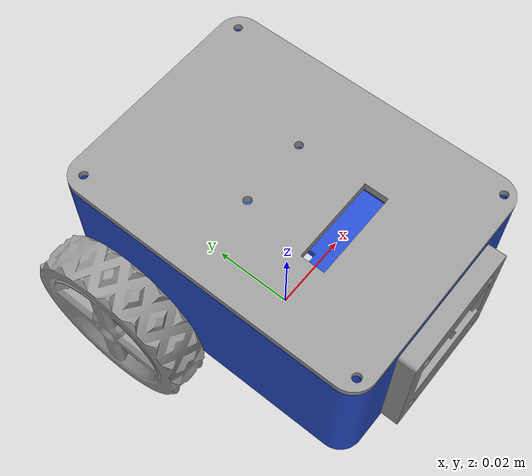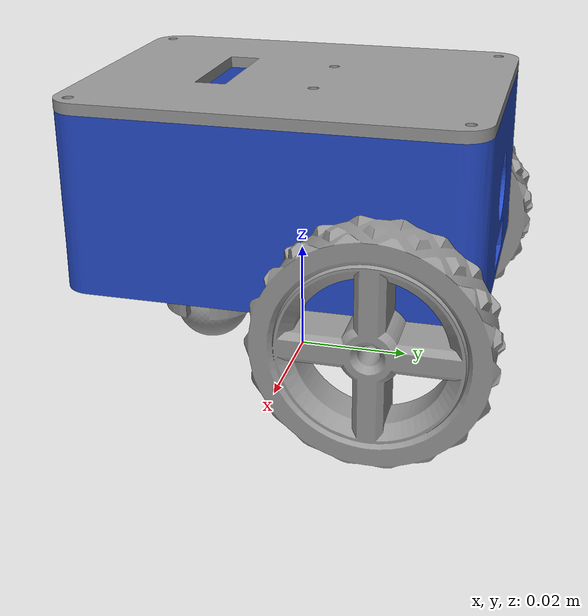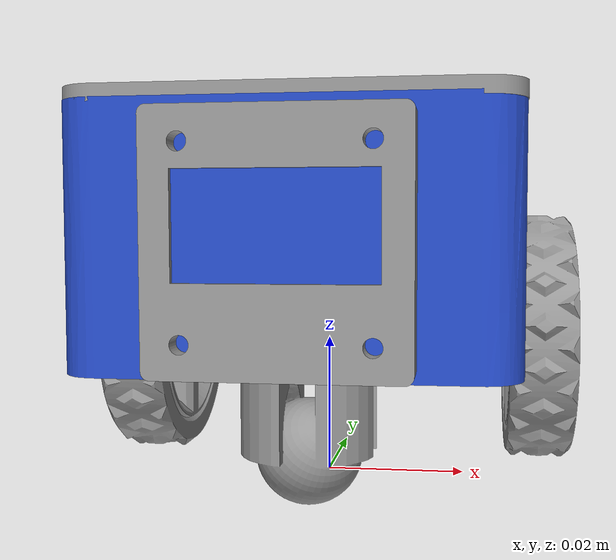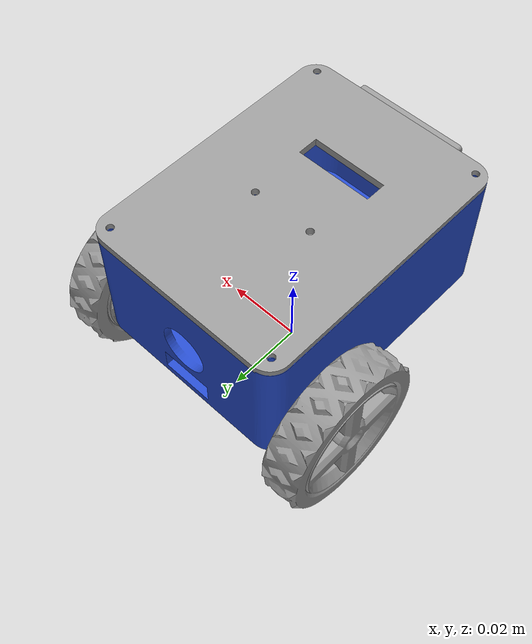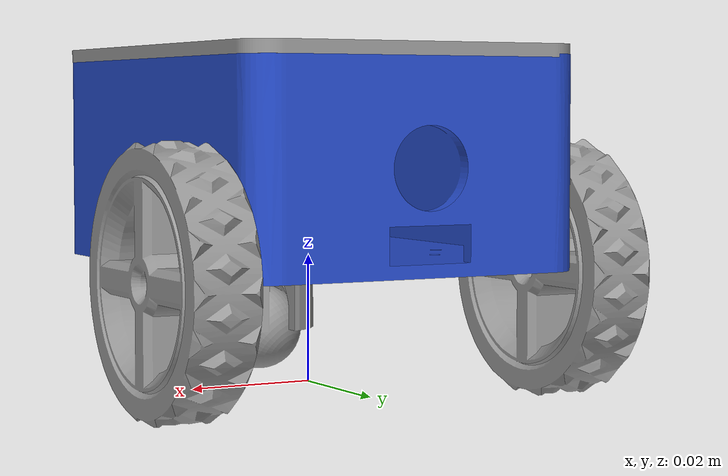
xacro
<?xml version="1.0"?>
<robot xmlns:xacro="http://www.ros.org/wiki/xacro">

    <link name="base_link">
        <visual>
            <geometry>
                <mesh  filename="package://my_companion_robot/meshes/base_edited.stl"
                scale="0.001 0.001 0.001"/>
            </geometry>
            <origin xyz="0 0 0" rpy="0 0 0" />
            <material name="blue" />
        </visual>
        <collision>
            <geometry>
                <box size="0.054 0.08 0.034 "/>
            </geometry>
            <origin xyz="0 0 0.018" rpy="0 0 0" />
        </collision>

        <inertial>

            <origin xyz="0 0 0.018" rpy="0 0 0"/>
            <mass value="0.038"/>
            <inertia
                ixx="3.1321e-05"
                ixy="-2.7215e-08"
                ixz="1.0147e-08"
                iyy="1.9849e-05"
                iyz="-2.7365e-07"
                izz="3.9200e-05"/>

        </inertial>
    </link>

    <xacro:macro name="wheel_link" params="prefix">
        <link name="${prefix}_wheel_link">
            <visual>
                <geometry>
                    <mesh filename="package://my_companion_robot/meshes/wheel.stl"
                          scale="0.001 0.001 0.001" />
                </geometry>
                <origin xyz="0 0 0" rpy="${pi / 2.0} 0 ${pi / 2.0}" />
                <material name="grey" />
            </visual>
            <collision>
                <geometry>
                    <cylinder radius="0.021" length="0.01" />
                </geometry>
                <origin xyz="0.005 0 0" rpy="${pi / 2.0} 0 ${pi / 2.0}" />
            </collision>
            <inertial>
                <origin xyz="0.005 0 0" rpy="${pi / 2.0} 0 ${pi / 2.0}"/>

                <mass value="0.018"/>

                <inertia
                    ixx="1.24355e-06"
                    ixy="0.0"
                    ixz="0.0"
                    iyy="1.24349e-06"
                    iyz="0.0"
                    izz="2.22070e-06"/>
            </inertial>
        </link>
    </xacro:macro>

    <xacro:wheel_link prefix="right" />
    <xacro:wheel_link prefix="left" />

     <link name="castor_wheel_link">
        <visual>
            <geometry>
                <mesh filename="package://my_companion_robot/meshes/castor_wheel.stl"
                          scale="0.001 0.001 0.001" />
            </geometry>
            <origin xyz="0 0 0" rpy="0 0 0" />
            <material name="grey" />
        </visual>
        <collision>
            <geometry>
                <cylinder radius="0.012" length="0.022"/>
            </geometry>
            <origin xyz="0 0 0.013" rpy="0 0 0" />
        </collision>
        <inertial>
            <origin xyz="0 0 0.013" rpy="0 0 0"/>

            <mass value="0.016"/>

            <inertia
                ixx="8.82630e-07"
                ixy="0.0"
                ixz="0.0"
                iyy="8.82619e-07"
                iyz="0.0"
                izz="5.89002e-07"/>
        </inertial>
    </link>

    <link name="base_footprint" />

    <link name="lid_link">
        <visual>
            <geometry>
                <mesh filename="package://my_companion_robot/meshes/lid_edited.stl"
                          scale="0.001 0.001 0.001" />
            </geometry>
            <origin xyz="0 0 0" rpy="0 0 0" />
            <material name="grey" />
        </visual>

    </link>

    <link name="oled_bezel_link">
        <visual>
            <geometry>
                <mesh filename="package://my_companion_robot/meshes/Bezel_OLEDyebl_096.stl"
                      scale="0.001 0.001 0.001"/>
            </geometry>

            <material name="grey"/>
        </visual>

    </link>

    <joint name="base_right_wheel_joint" type="continuous">
        <parent link="base_link" />
        <child link="right_wheel_link" />
        <origin xyz="0.027 0.02 0" rpy="0 0 0" />
        <axis xyz="1 0 0" />
    </joint>

    <joint name="base_left_wheel_joint" type="continuous">
        <parent link="base_link" />
        <child link="left_wheel_link" />
        <origin xyz="-0.037 0.02 0" rpy="0 0 0" />
        <axis xyz="1 0 0" />
    </joint>

    <joint name="base_lid_joint" type="fixed">
        <parent link="base_link" />
        <child link="lid_link" />
        <origin xyz="-0.0359 -0.016 0.032" rpy="0 0 0" />

    </joint>

    <joint name="base_oled_bezel_joint" type="fixed">
        <parent link="base_link"/>
        <child link="oled_bezel_link"/>
        <origin xyz="0 -0.04 0.016" rpy="-${pi / 2} ${pi} 0"/>
    </joint>

    <joint name="base_castor_wheel_joint" type="fixed">
        <parent link="base_link" />
        <child link="castor_wheel_link" />
        <origin xyz="0 -0.018 -0.0185" rpy="0 0 0" />

    </joint>

    <joint name="base_base_footprint_joint" type="fixed">
        <parent link="base_footprint" />
        <child link="base_link" />
        <origin xyz="0 0 0.0185" rpy="0 0 0" />
    </joint>

</robot>
